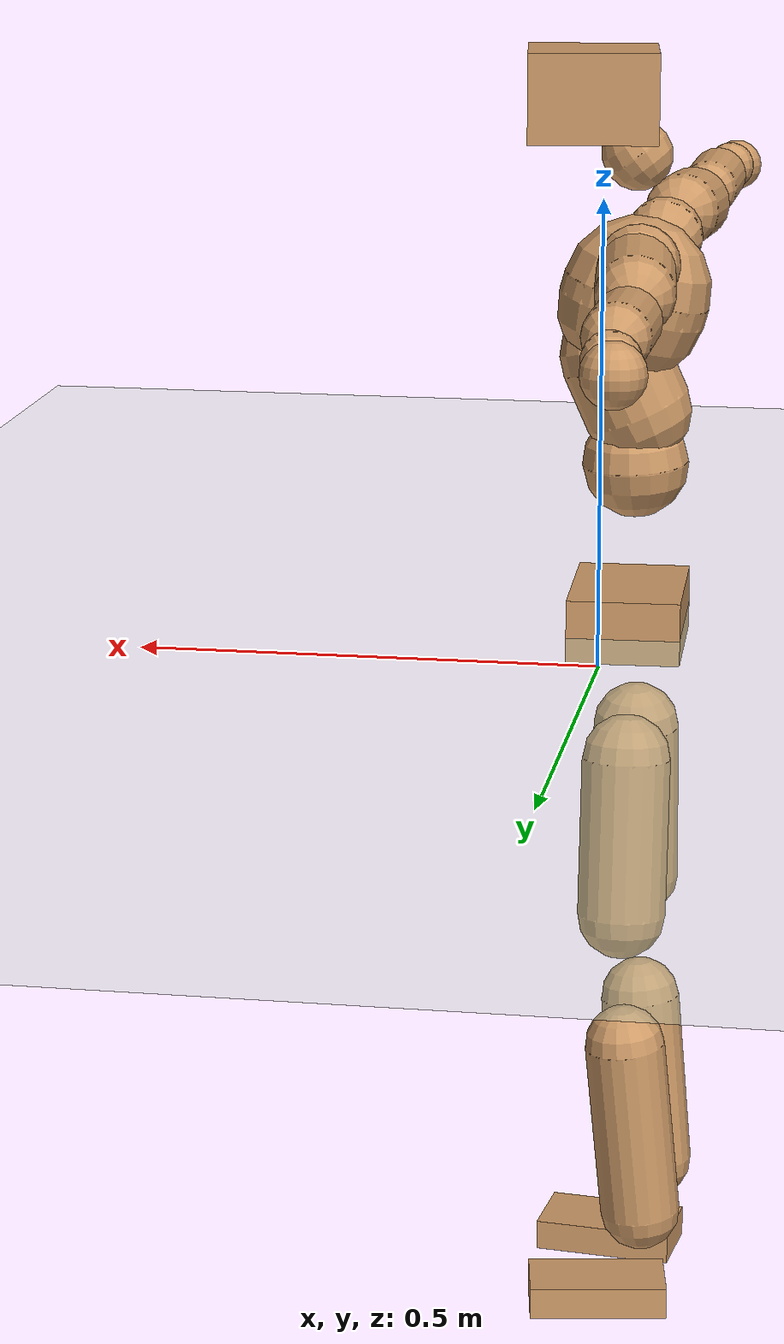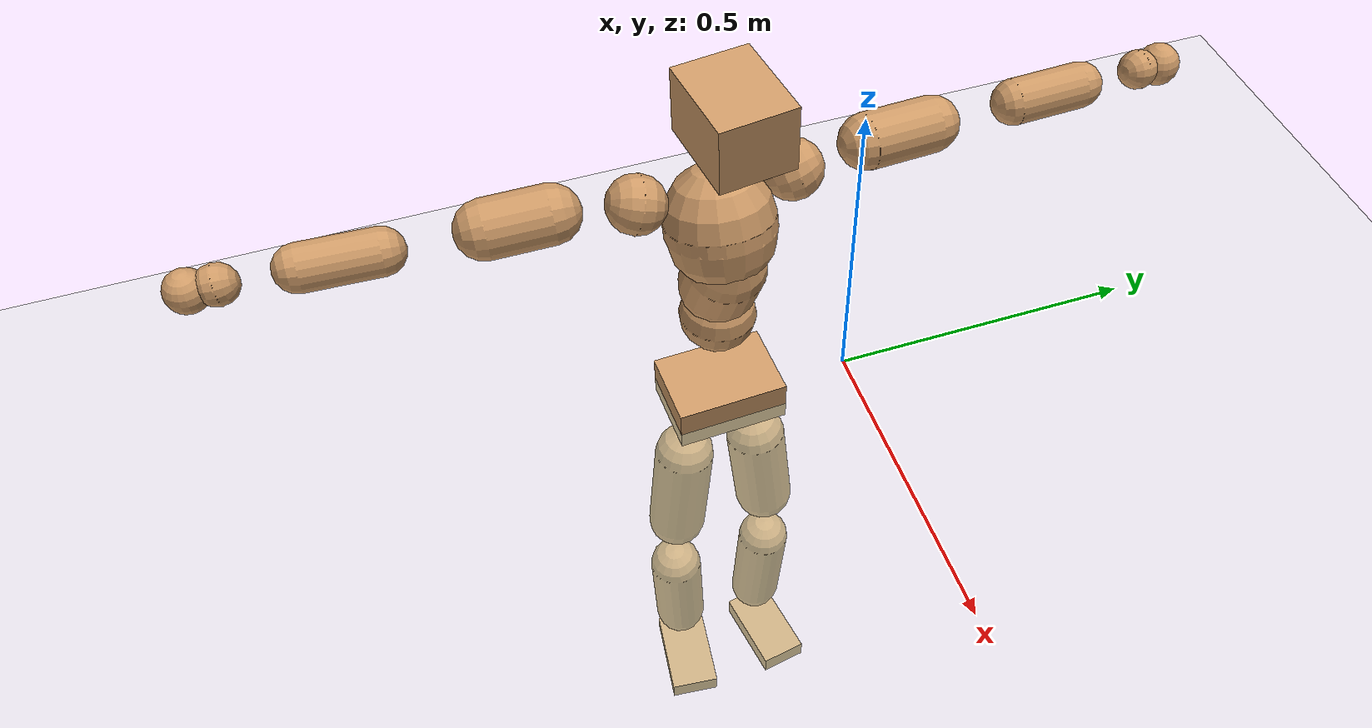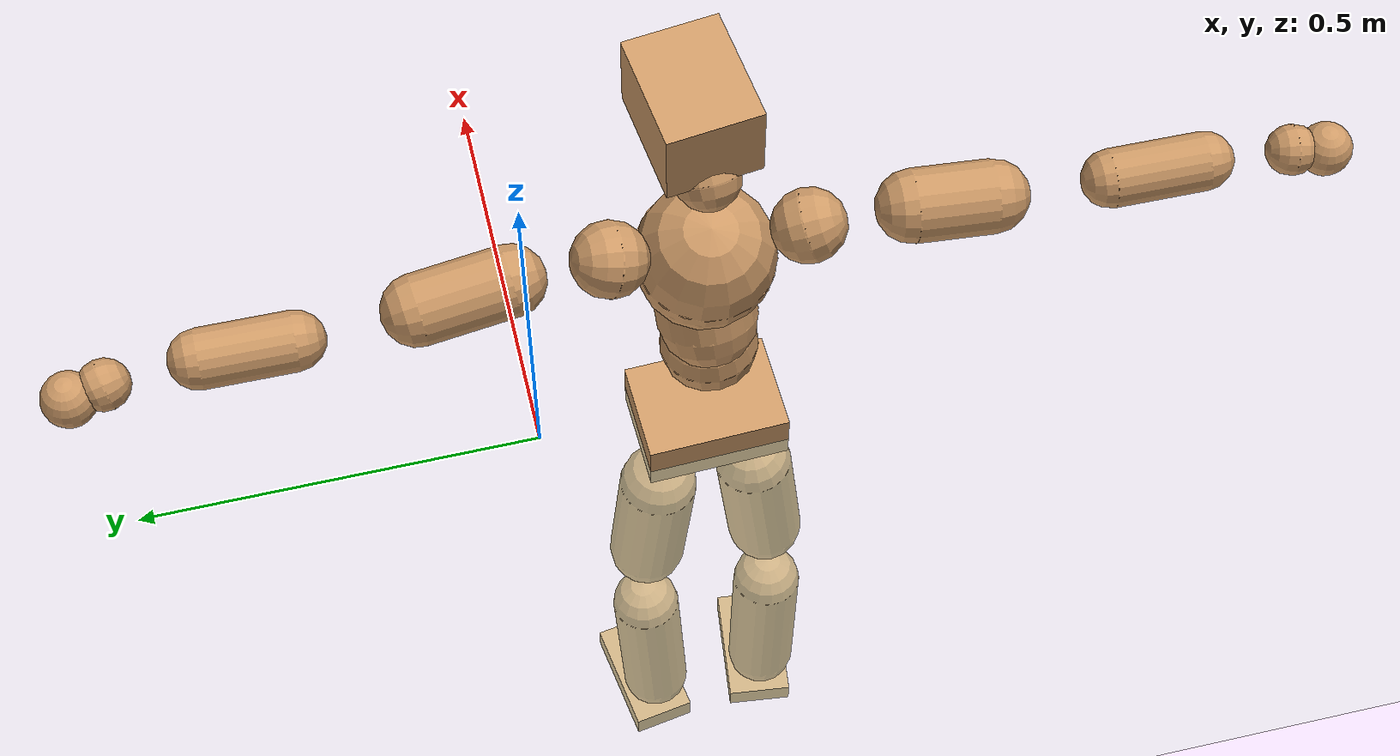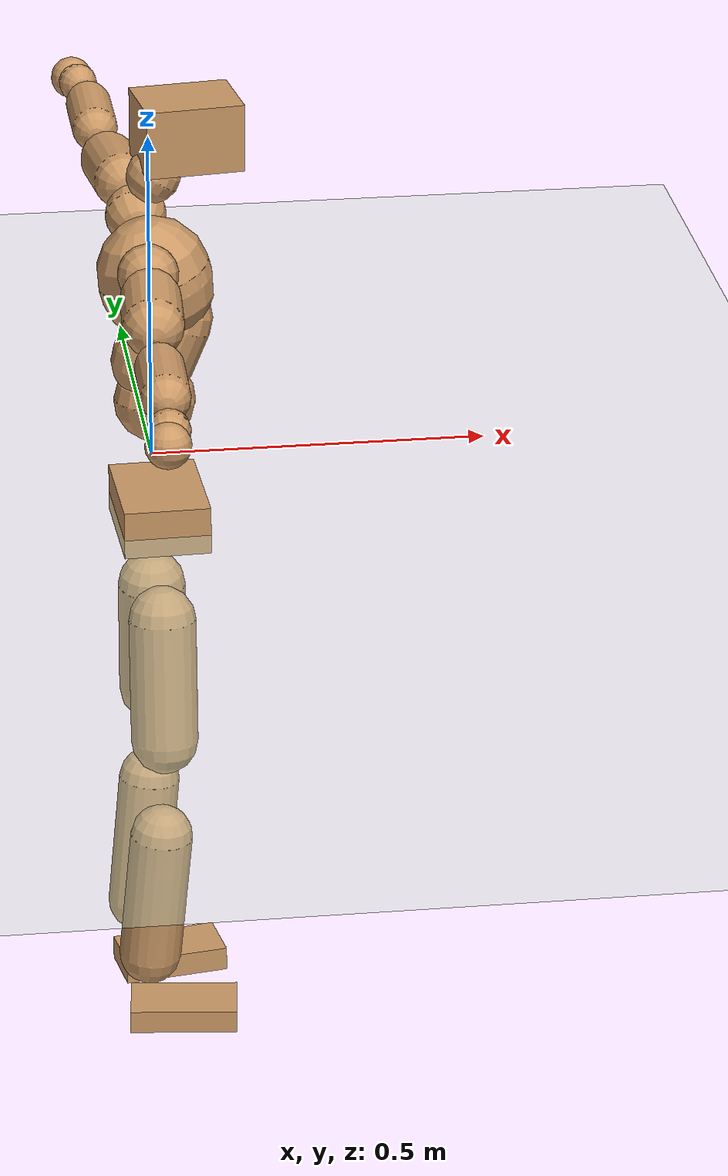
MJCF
<mujoco model="humanoid">
  <compiler coordinate="local" angle="radian"/>
  <default>
    <joint damping="0.0" armature="0.01" stiffness="0.0" limited="true"/>
    <geom conaffinity="1" condim="3" contype="7" margin="0.001" rgba="0.8 0.6 .4 1"/>
  </default>
  <asset>
    <texture type="skybox" builtin="gradient" rgb1=".4 .5 .6" rgb2="0 0 0" width="100" height="100"/>
    <texture builtin="flat" height="1278" mark="cross" markrgb="1 1 1" name="texgeom" random="0.01" rgb1="0.8 0.6 0.4" rgb2="0.8 0.6 0.4" type="cube" width="127"/>
    <texture builtin="checker" height="100" name="texplane" rgb1="0 0 0" rgb2="0.8 0.8 0.8" type="2d" width="100"/>
    <material name="MatPlane" reflectance="0.5" shininess="1" specular="1" texrepeat="60 60" texture="texplane"/>
    <material name="geom" texture="texgeom" texuniform="true"/>
  </asset>
  <worldbody>
    <light cutoff="100" diffuse="1 1 1" dir="-0 0 -1.3" directional="true" exponent="1" pos="0 0 1.3" specular=".1 .1 .1"/>
    <geom conaffinity="1" condim="3" name="floor" pos="0 0 0" rgba="0.8 0.9 0.8 1" size="100 100 .2" type="plane" material="MatPlane"/>
    <body name="Pelvis" pos="-0.0041 -0.2091 0.0161">
      <freejoint name="Pelvis"/>
      <geom type="box" contype="1" conaffinity="1" density="5359.375091" pos="-0.0059 -0.0002 -0.0113" size="0.0628 0.0884 0.0353" quat="0.9998 0.0000 0.0000 0.0174" name="Pelvis"/>
      <body name="L_Hip" pos="-0.0132 0.0564 -0.0817">
        <joint name="L_Hip_x" type="hinge" pos="0 0 0" axis="1 0 0" stiffness="1600" damping="160" armature="0.02" range="-180.0000 180.0000"/>
        <joint name="L_Hip_y" type="hinge" pos="0 0 0" axis="0 1 0" stiffness="1600" damping="160" armature="0.02" range="-180.0000 180.0000"/>
        <joint name="L_Hip_z" type="hinge" pos="0 0 0" axis="0 0 1" stiffness="1600" damping="160" armature="0.02" range="-180.0000 180.0000"/>
        <geom type="capsule" contype="1" conaffinity="1" density="2040.816327" size="0.0496" fromto="0.0005 0.0076 -0.0793 0.0016 0.0248 -0.2586" name="L_Hip"/>
        <body name="L_Knee" pos="0.0021 0.0324 -0.3378">
          <joint name="L_Knee_x" type="hinge" pos="0 0 0" axis="1 0 0" stiffness="1600" damping="160" armature="0.02" range="-180.0000 180.0000"/>
          <joint name="L_Knee_y" type="hinge" pos="0 0 0" axis="0 1 0" stiffness="1600" damping="160" armature="0.02" range="-180.0000 180.0000"/>
          <joint name="L_Knee_z" type="hinge" pos="0 0 0" axis="0 0 1" stiffness="1600" damping="160" armature="0.02" range="-180.0000 180.0000"/>
          <geom type="capsule" contype="1" conaffinity="1" density="1234.567901" size="0.0454" fromto="-0.0072 -0.0026 -0.0750 -0.0270 -0.0099 -0.2807" name="L_Knee"/>
          <body name="L_Ankle" pos="-0.0342 -0.0125 -0.3557">
            <joint name="L_Ankle_x" type="hinge" pos="0 0 0" axis="1 0 0" stiffness="1600" damping="160" armature="0.02" range="-180.0000 180.0000"/>
            <joint name="L_Ankle_y" type="hinge" pos="0 0 0" axis="0 1 0" stiffness="1600" damping="160" armature="0.02" range="-180.0000 180.0000"/>
            <joint name="L_Ankle_z" type="hinge" pos="0 0 0" axis="0 0 1" stiffness="1600" damping="160" armature="0.02" range="-180.0000 180.0000"/>
            <geom type="box" contype="1" conaffinity="1" density="999.999981" pos="0.0552 0.0088 -0.0255" size="0.0784 0.0416 0.0182" quat="0.9968 0.0000 0.0000 0.0794" name="L_Ankle"/>
            <body name="L_Toe" pos="0.1103 0.0177 -0.0511">
              <joint name="L_Toe_x" type="hinge" pos="0 0 0" axis="1 0 0" stiffness="1000" damping="100" armature="0.02" range="-180.0000 180.0000"/>
              <joint name="L_Toe_y" type="hinge" pos="0 0 0" axis="0 1 0" stiffness="1000" damping="100" armature="0.02" range="-180.0000 180.0000"/>
              <joint name="L_Toe_z" type="hinge" pos="0 0 0" axis="0 0 1" stiffness="1000" damping="100" armature="0.02" range="-180.0000 180.0000"/>
              <geom type="box" contype="1" conaffinity="1" density="8625990.40899" pos="0.0000 0.0000 0.0262" size="0.0009 0.0021 0.0009" quat="0.9962 0.0000 0.0000 0.0867" name="L_Toe"/>
            </body>
          </body>
        </body>
      </body>
      <body name="R_Hip" pos="-0.0098 -0.0545 -0.0807">
        <joint name="R_Hip_x" type="hinge" pos="0 0 0" axis="1 0 0" stiffness="1600" damping="160" armature="0.02" range="-180.0000 180.0000"/>
        <joint name="R_Hip_y" type="hinge" pos="0 0 0" axis="0 1 0" stiffness="1600" damping="160" armature="0.02" range="-180.0000 180.0000"/>
        <joint name="R_Hip_z" type="hinge" pos="0 0 0" axis="0 0 1" stiffness="1600" damping="160" armature="0.02" range="-180.0000 180.0000"/>
        <geom type="capsule" contype="1" conaffinity="1" density="2040.816327" size="0.049" fromto="-0.0002 -0.0083 -0.0785 -0.0007 -0.0280 -0.2663" name="R_Hip"/>
        <body name="R_Knee" pos="-0.0009 -0.0363 -0.3449">
          <joint name="R_Knee_x" type="hinge" pos="0 0 0" axis="1 0 0" stiffness="1600" damping="160" armature="0.02" range="-180.0000 180.0000"/>
          <joint name="R_Knee_y" type="hinge" pos="0 0 0" axis="0 1 0" stiffness="1600" damping="160" armature="0.02" range="-180.0000 180.0000"/>
          <joint name="R_Knee_z" type="hinge" pos="0 0 0" axis="0 0 1" stiffness="1600" damping="160" armature="0.02" range="-180.0000 180.0000"/>
          <geom type="capsule" contype="1" conaffinity="1" density="1234.567901" size="0.0459" fromto="-0.0068 0.0031 -0.0755 -0.0252 0.0115 -0.2782" name="R_Knee"/>
          <body name="R_Ankle" pos="-0.032 0.0146 -0.3537">
            <joint name="R_Ankle_x" type="hinge" pos="0 0 0" axis="1 0 0" stiffness="1600" damping="160" armature="0.02" range="-180.0000 180.0000"/>
            <joint name="R_Ankle_y" type="hinge" pos="0 0 0" axis="0 1 0" stiffness="1600" damping="160" armature="0.02" range="-180.0000 180.0000"/>
            <joint name="R_Ankle_z" type="hinge" pos="0 0 0" axis="0 0 1" stiffness="1600" damping="160" armature="0.02" range="-180.0000 180.0000"/>
            <geom type="box" contype="1" conaffinity="1" density="999.999997" pos="0.0565 -0.0066 -0.0209" size="0.0797 0.0438 0.0174" quat="0.9983 0.0000 0.0000 -0.0577" name="R_Ankle"/>
            <body name="R_Toe" pos="0.113 -0.0131 -0.0418">
              <joint name="R_Toe_x" type="hinge" pos="0 0 0" axis="1 0 0" stiffness="1000" damping="100" armature="0.02" range="-180.0000 180.0000"/>
              <joint name="R_Toe_y" type="hinge" pos="0 0 0" axis="0 1 0" stiffness="1000" damping="100" armature="0.02" range="-180.0000 180.0000"/>
              <joint name="R_Toe_z" type="hinge" pos="0 0 0" axis="0 0 1" stiffness="1000" damping="100" armature="0.02" range="-180.0000 180.0000"/>
              <geom type="box" contype="1" conaffinity="1" density="8594177.510674" pos="0.0000 0.0000 0.0237" size="0.0008 0.0021 0.001" quat="0.9988 0.0000 0.0000 -0.0481" name="R_Toe"/>
            </body>
          </body>
        </body>
      </body>
      <body name="Torso" pos="-0.0123 -0.0032 0.0948">
        <joint name="Torso_x" type="hinge" pos="0 0 0" axis="1 0 0" stiffness="2000" damping="200" armature="0.02" range="-180.0000 180.0000"/>
        <joint name="Torso_y" type="hinge" pos="0 0 0" axis="0 1 0" stiffness="2000" damping="200" armature="0.02" range="-180.0000 180.0000"/>
        <joint name="Torso_z" type="hinge" pos="0 0 0" axis="0 0 1" stiffness="2000" damping="200" armature="0.02" range="-180.0000 180.0000"/>
        <geom type="capsule" contype="1" conaffinity="1" density="2040.816327" size="0.0592" fromto="0.0012 0.0026 0.0661 0.0013 0.0027 0.0681" name="Torso"/>
        <body name="Spine" pos="0.0025 0.0053 0.1343">
          <joint name="Spine_x" type="hinge" pos="0 0 0" axis="1 0 0" stiffness="2000" damping="200" armature="0.02" range="-180.0000 180.0000"/>
          <joint name="Spine_y" type="hinge" pos="0 0 0" axis="0 1 0" stiffness="2000" damping="200" armature="0.02" range="-180.0000 180.0000"/>
          <joint name="Spine_z" type="hinge" pos="0 0 0" axis="0 0 1" stiffness="2000" damping="200" armature="0.02" range="-180.0000 180.0000"/>
          <geom type="capsule" contype="1" conaffinity="1" density="2040.816327" size="0.0602" fromto="0.0241 0.0036 0.0550 -0.0031 -0.0005 -0.0070" name="Spine"/>
          <body name="Chest" pos="0.0211 0.0032 0.048">
            <joint name="Chest_x" type="hinge" pos="0 0 0" axis="1 0 0" stiffness="2000" damping="200" armature="0.02" range="-180.0000 180.0000"/>
            <joint name="Chest_y" type="hinge" pos="0 0 0" axis="0 1 0" stiffness="2000" damping="200" armature="0.02" range="-180.0000 180.0000"/>
            <joint name="Chest_z" type="hinge" pos="0 0 0" axis="0 0 1" stiffness="2000" damping="200" armature="0.02" range="-180.0000 180.0000"/>
            <geom type="capsule" contype="1" conaffinity="1" density="2040.816327" size="0.0817" fromto="-0.0215 -0.0012 0.0788 -0.0158 -0.0009 0.0580" name="Chest"/>
            <body name="Neck" pos="-0.0432 -0.0044 0.1945">
              <joint name="Neck_x" type="hinge" pos="0 0 0" axis="1 0 0" stiffness="1000" damping="100" armature="0.02" range="-180.0000 180.0000"/>
              <joint name="Neck_y" type="hinge" pos="0 0 0" axis="0 1 0" stiffness="1000" damping="100" armature="0.02" range="-180.0000 180.0000"/>
              <joint name="Neck_z" type="hinge" pos="0 0 0" axis="0 0 1" stiffness="1000" damping="100" armature="0.02" range="-180.0000 180.0000"/>
              <geom type="capsule" contype="1" conaffinity="1" density="1000" size="0.0386" fromto="0.0231 0.0021 0.0309 0.0243 0.0022 0.0325" name="Neck"/>
              <body name="Head" pos="0.0473 0.0042 0.0634">
                <joint name="Head_x" type="hinge" pos="0 0 0" axis="1 0 0" stiffness="1000" damping="100" armature="0.02" range="-180.0000 180.0000"/>
                <joint name="Head_y" type="hinge" pos="0 0 0" axis="0 1 0" stiffness="1000" damping="100" armature="0.02" range="-180.0000 180.0000"/>
                <joint name="Head_z" type="hinge" pos="0 0 0" axis="0 0 1" stiffness="1000" damping="100" armature="0.02" range="-180.0000 180.0000"/>
                <geom type="box" contype="1" conaffinity="1" density="2249.999853" pos="0.0247 0.0031 0.0327" size="0.0704 0.0557 0.0488" quat="0.9980 0.0000 0.0000 0.0626" name="Head"/>
              </body>
            </body>
            <body name="L_Thorax" pos="-0.0329 0.069 0.1092">
              <joint name="L_Thorax_x" type="hinge" pos="0 0 0" axis="1 0 0" stiffness="1000" damping="100" armature="0.02" range="-180.0000 180.0000"/>
              <joint name="L_Thorax_y" type="hinge" pos="0 0 0" axis="0 1 0" stiffness="1000" damping="100" armature="0.02" range="-180.0000 180.0000"/>
              <joint name="L_Thorax_z" type="hinge" pos="0 0 0" axis="0 0 1" stiffness="1000" damping="100" armature="0.02" range="-180.0000 180.0000"/>
              <geom type="capsule" contype="1" conaffinity="1" density="1000" size="0.0444" fromto="-0.0019 0.0414 0.0142 -0.0020 0.0433 0.0148" name="L_Thorax"/>
              <body name="L_Shoulder" pos="-0.0038 0.0847 0.0289">
                <joint name="L_Shoulder_x" type="hinge" pos="0 0 0" axis="1 0 0" stiffness="1000" damping="100" armature="0.02" range="-720.0000 720.0000"/>
                <joint name="L_Shoulder_y" type="hinge" pos="0 0 0" axis="0 1 0" stiffness="1000" damping="100" armature="0.02" range="-720.0000 720.0000"/>
                <joint name="L_Shoulder_z" type="hinge" pos="0 0 0" axis="0 0 1" stiffness="1000" damping="100" armature="0.02" range="-720.0000 720.0000"/>
                <geom type="capsule" contype="1" conaffinity="1" density="1000" size="0.0413" fromto="-0.0070 0.0709 -0.0036 -0.0173 0.1763 -0.0090" name="L_Shoulder"/>
                <body name="L_Elbow" pos="-0.0243 0.2473 -0.0126">
                  <joint name="L_Elbow_x" type="hinge" pos="0 0 0" axis="1 0 0" stiffness="1000" damping="100" armature="0.02" range="-720.0000 720.0000"/>
                  <joint name="L_Elbow_y" type="hinge" pos="0 0 0" axis="0 1 0" stiffness="1000" damping="100" armature="0.02" range="-720.0000 720.0000"/>
                  <joint name="L_Elbow_z" type="hinge" pos="0 0 0" axis="0 0 1" stiffness="1000" damping="100" armature="0.02" range="-720.0000 720.0000"/>
                  <geom type="capsule" contype="1" conaffinity="1" density="1000" size="0.034" fromto="-0.0005 0.0640 0.0018 -0.0012 0.1697 0.0048" name="L_Elbow"/>
                  <body name="L_Wrist" pos="-0.0017 0.2337 0.0066">
                    <joint name="L_Wrist_x" type="hinge" pos="0 0 0" axis="1 0 0" stiffness="600" damping="60" armature="0.02" range="-180.0000 180.0000"/>
                    <joint name="L_Wrist_y" type="hinge" pos="0 0 0" axis="0 1 0" stiffness="600" damping="60" armature="0.02" range="-180.0000 180.0000"/>
                    <joint name="L_Wrist_z" type="hinge" pos="0 0 0" axis="0 0 1" stiffness="600" damping="60" armature="0.02" range="-180.0000 180.0000"/>
                    <geom type="capsule" contype="1" conaffinity="1" density="1000" size="0.0289" fromto="-0.0063 0.0381 -0.0047 -0.0067 0.0400 -0.0049" name="L_Wrist"/>
                    <body name="L_Hand" pos="-0.013 0.0781 -0.0096">
                      <joint name="L_Hand_x" type="hinge" pos="0 0 0" axis="1 0 0" stiffness="600" damping="60" armature="0.02" range="-180.0000 180.0000"/>
                      <joint name="L_Hand_y" type="hinge" pos="0 0 0" axis="0 1 0" stiffness="600" damping="60" armature="0.02" range="-180.0000 180.0000"/>
                      <joint name="L_Hand_z" type="hinge" pos="0 0 0" axis="0 0 1" stiffness="600" damping="60" armature="0.02" range="-180.0000 180.0000"/>
                      <geom type="sphere" contype="1" conaffinity="1" density="1000" size="0.0314" pos="0.0000 0.0000 0.0000" name="L_Hand"/>
                    </body>
                  </body>
                </body>
              </body>
            </body>
            <body name="R_Thorax" pos="-0.0356 -0.071 0.1068">
              <joint name="R_Thorax_x" type="hinge" pos="0 0 0" axis="1 0 0" stiffness="1000" damping="100" armature="0.02" range="-180.0000 180.0000"/>
              <joint name="R_Thorax_y" type="hinge" pos="0 0 0" axis="0 1 0" stiffness="1000" damping="100" armature="0.02" range="-180.0000 180.0000"/>
              <joint name="R_Thorax_z" type="hinge" pos="0 0 0" axis="0 0 1" stiffness="1000" damping="100" armature="0.02" range="-180.0000 180.0000"/>
              <geom type="capsule" contype="1" conaffinity="1" density="1000" size="0.0432" fromto="-0.0039 -0.0426 0.0141 -0.0041 -0.0445 0.0147" name="R_Thorax"/>
              <body name="R_Shoulder" pos="-0.008 -0.0872 0.0287">
                <joint name="R_Shoulder_x" type="hinge" pos="0 0 0" axis="1 0 0" stiffness="1000" damping="100" armature="0.02" range="-720.0000 720.0000"/>
                <joint name="R_Shoulder_y" type="hinge" pos="0 0 0" axis="0 1 0" stiffness="1000" damping="100" armature="0.02" range="-720.0000 720.0000"/>
                <joint name="R_Shoulder_z" type="hinge" pos="0 0 0" axis="0 0 1" stiffness="1000" damping="100" armature="0.02" range="-720.0000 720.0000"/>
                <geom type="capsule" contype="1" conaffinity="1" density="1000" size="0.0425" fromto="-0.0041 -0.0723 -0.0033 -0.0093 -0.1642 -0.0075" name="R_Shoulder"/>
                <body name="R_Elbow" pos="-0.0134 -0.2365 -0.0108">
                  <joint name="R_Elbow_x" type="hinge" pos="0 0 0" axis="1 0 0" stiffness="1000" damping="100" armature="0.02" range="-720.0000 720.0000"/>
                  <joint name="R_Elbow_y" type="hinge" pos="0 0 0" axis="0 1 0" stiffness="1000" damping="100" armature="0.02" range="-720.0000 720.0000"/>
                  <joint name="R_Elbow_z" type="hinge" pos="0 0 0" axis="0 0 1" stiffness="1000" damping="100" armature="0.02" range="-720.0000 720.0000"/>
                  <geom type="capsule" contype="1" conaffinity="1" density="1000" size="0.0338" fromto="-0.0017 -0.0638 0.0014 -0.0045 -0.1728 0.0037" name="R_Elbow"/>
                  <body name="R_Wrist" pos="-0.0062 -0.2366 0.005">
                    <joint name="R_Wrist_x" type="hinge" pos="0 0 0" axis="1 0 0" stiffness="600" damping="60" armature="0.02" range="-180.0000 180.0000"/>
                    <joint name="R_Wrist_y" type="hinge" pos="0 0 0" axis="0 1 0" stiffness="600" damping="60" armature="0.02" range="-180.0000 180.0000"/>
                    <joint name="R_Wrist_z" type="hinge" pos="0 0 0" axis="0 0 1" stiffness="600" damping="60" armature="0.02" range="-180.0000 180.0000"/>
                    <geom type="capsule" contype="1" conaffinity="1" density="1000" size="0.0292" fromto="-0.0048 -0.0377 -0.0034 -0.0050 -0.0397 -0.0036" name="R_Wrist"/>
                    <body name="R_Hand" pos="-0.0098 -0.0774 -0.007">
                      <joint name="R_Hand_x" type="hinge" pos="0 0 0" axis="1 0 0" stiffness="600" damping="60" armature="0.02" range="-180.0000 180.0000"/>
                      <joint name="R_Hand_y" type="hinge" pos="0 0 0" axis="0 1 0" stiffness="600" damping="60" armature="0.02" range="-180.0000 180.0000"/>
                      <joint name="R_Hand_z" type="hinge" pos="0 0 0" axis="0 0 1" stiffness="600" damping="60" armature="0.02" range="-180.0000 180.0000"/>
                      <geom type="sphere" contype="1" conaffinity="1" density="1000" size="0.0309" pos="0.0000 0.0000 0.0000" name="R_Hand"/>
                    </body>
                  </body>
                </body>
              </body>
            </body>
          </body>
        </body>
      </body>
    </body>
  </worldbody>
  <actuator>
    <motor name="L_Hip_x" joint="L_Hip_x" gear="500"/>
    <motor name="L_Hip_y" joint="L_Hip_y" gear="500"/>
    <motor name="L_Hip_z" joint="L_Hip_z" gear="500"/>
    <motor name="L_Knee_x" joint="L_Knee_x" gear="500"/>
    <motor name="L_Knee_y" joint="L_Knee_y" gear="500"/>
    <motor name="L_Knee_z" joint="L_Knee_z" gear="500"/>
    <motor name="L_Ankle_x" joint="L_Ankle_x" gear="500"/>
    <motor name="L_Ankle_y" joint="L_Ankle_y" gear="500"/>
    <motor name="L_Ankle_z" joint="L_Ankle_z" gear="500"/>
    <motor name="L_Toe_x" joint="L_Toe_x" gear="500"/>
    <motor name="L_Toe_y" joint="L_Toe_y" gear="500"/>
    <motor name="L_Toe_z" joint="L_Toe_z" gear="500"/>
    <motor name="R_Hip_x" joint="R_Hip_x" gear="500"/>
    <motor name="R_Hip_y" joint="R_Hip_y" gear="500"/>
    <motor name="R_Hip_z" joint="R_Hip_z" gear="500"/>
    <motor name="R_Knee_x" joint="R_Knee_x" gear="500"/>
    <motor name="R_Knee_y" joint="R_Knee_y" gear="500"/>
    <motor name="R_Knee_z" joint="R_Knee_z" gear="500"/>
    <motor name="R_Ankle_x" joint="R_Ankle_x" gear="500"/>
    <motor name="R_Ankle_y" joint="R_Ankle_y" gear="500"/>
    <motor name="R_Ankle_z" joint="R_Ankle_z" gear="500"/>
    <motor name="R_Toe_x" joint="R_Toe_x" gear="500"/>
    <motor name="R_Toe_y" joint="R_Toe_y" gear="500"/>
    <motor name="R_Toe_z" joint="R_Toe_z" gear="500"/>
    <motor name="Torso_x" joint="Torso_x" gear="500"/>
    <motor name="Torso_y" joint="Torso_y" gear="500"/>
    <motor name="Torso_z" joint="Torso_z" gear="500"/>
    <motor name="Spine_x" joint="Spine_x" gear="500"/>
    <motor name="Spine_y" joint="Spine_y" gear="500"/>
    <motor name="Spine_z" joint="Spine_z" gear="500"/>
    <motor name="Chest_x" joint="Chest_x" gear="500"/>
    <motor name="Chest_y" joint="Chest_y" gear="500"/>
    <motor name="Chest_z" joint="Chest_z" gear="500"/>
    <motor name="Neck_x" joint="Neck_x" gear="500"/>
    <motor name="Neck_y" joint="Neck_y" gear="500"/>
    <motor name="Neck_z" joint="Neck_z" gear="500"/>
    <motor name="Head_x" joint="Head_x" gear="500"/>
    <motor name="Head_y" joint="Head_y" gear="500"/>
    <motor name="Head_z" joint="Head_z" gear="500"/>
    <motor name="L_Thorax_x" joint="L_Thorax_x" gear="500"/>
    <motor name="L_Thorax_y" joint="L_Thorax_y" gear="500"/>
    <motor name="L_Thorax_z" joint="L_Thorax_z" gear="500"/>
    <motor name="L_Shoulder_x" joint="L_Shoulder_x" gear="500"/>
    <motor name="L_Shoulder_y" joint="L_Shoulder_y" gear="500"/>
    <motor name="L_Shoulder_z" joint="L_Shoulder_z" gear="500"/>
    <motor name="L_Elbow_x" joint="L_Elbow_x" gear="500"/>
    <motor name="L_Elbow_y" joint="L_Elbow_y" gear="500"/>
    <motor name="L_Elbow_z" joint="L_Elbow_z" gear="500"/>
    <motor name="L_Wrist_x" joint="L_Wrist_x" gear="500"/>
    <motor name="L_Wrist_y" joint="L_Wrist_y" gear="500"/>
    <motor name="L_Wrist_z" joint="L_Wrist_z" gear="500"/>
    <motor name="L_Hand_x" joint="L_Hand_x" gear="500"/>
    <motor name="L_Hand_y" joint="L_Hand_y" gear="500"/>
    <motor name="L_Hand_z" joint="L_Hand_z" gear="500"/>
    <motor name="R_Thorax_x" joint="R_Thorax_x" gear="500"/>
    <motor name="R_Thorax_y" joint="R_Thorax_y" gear="500"/>
    <motor name="R_Thorax_z" joint="R_Thorax_z" gear="500"/>
    <motor name="R_Shoulder_x" joint="R_Shoulder_x" gear="500"/>
    <motor name="R_Shoulder_y" joint="R_Shoulder_y" gear="500"/>
    <motor name="R_Shoulder_z" joint="R_Shoulder_z" gear="500"/>
    <motor name="R_Elbow_x" joint="R_Elbow_x" gear="500"/>
    <motor name="R_Elbow_y" joint="R_Elbow_y" gear="500"/>
    <motor name="R_Elbow_z" joint="R_Elbow_z" gear="500"/>
    <motor name="R_Wrist_x" joint="R_Wrist_x" gear="500"/>
    <motor name="R_Wrist_y" joint="R_Wrist_y" gear="500"/>
    <motor name="R_Wrist_z" joint="R_Wrist_z" gear="500"/>
    <motor name="R_Hand_x" joint="R_Hand_x" gear="500"/>
    <motor name="R_Hand_y" joint="R_Hand_y" gear="500"/>
    <motor name="R_Hand_z" joint="R_Hand_z" gear="500"/>
  </actuator>
  <contact>
    <exclude body1="Torso" body2="Chest"/>
    <exclude body1="Head" body2="Chest"/>
    <exclude body1="R_Knee" body2="R_Toe"/>
    <exclude body1="R_Knee" body2="L_Ankle"/>
    <exclude body1="R_Knee" body2="L_Toe"/>
    <exclude body1="L_Knee" body2="L_Toe"/>
    <exclude body1="L_Knee" body2="R_Ankle"/>
    <exclude body1="L_Knee" body2="R_Toe"/>
    <exclude body1="L_Shoulder" body2="Chest"/>
    <exclude body1="R_Shoulder" body2="Chest"/>
  </contact>
  <sensor/>
  <size njmax="700" nconmax="700"/>
</mujoco>
